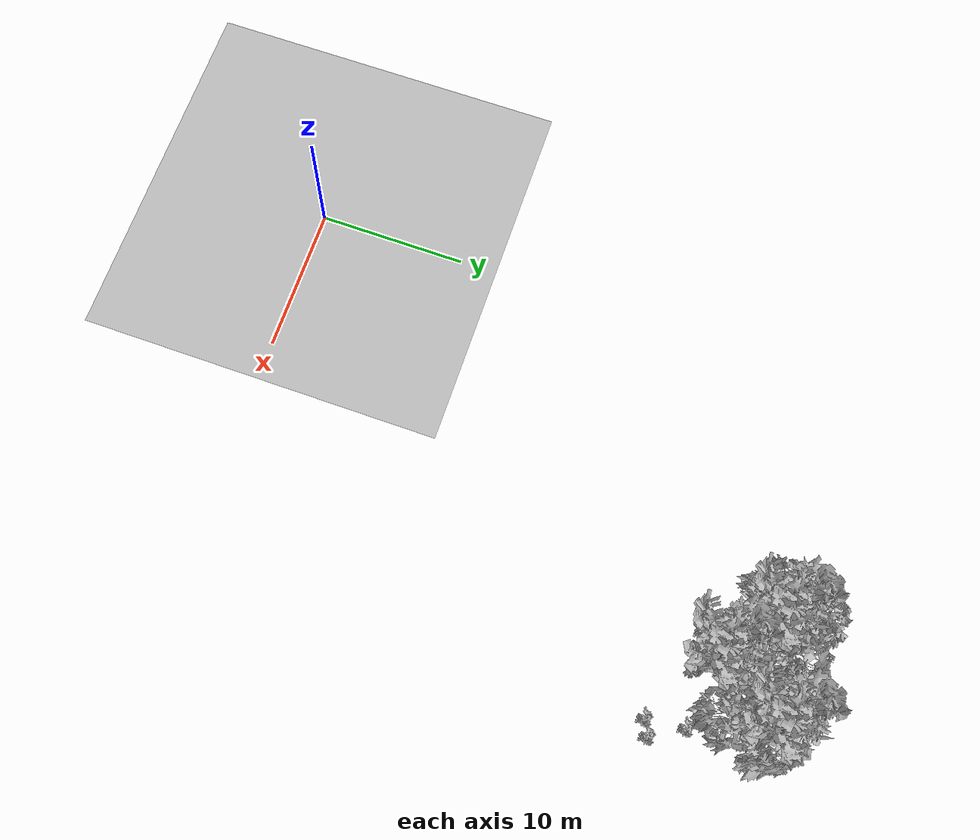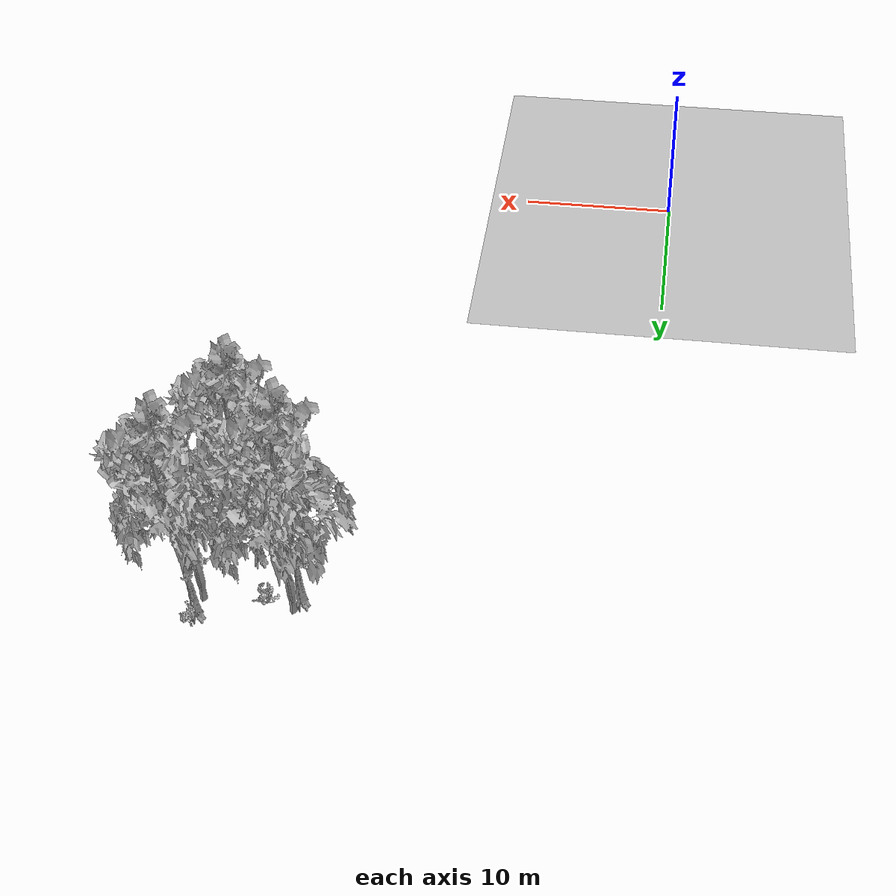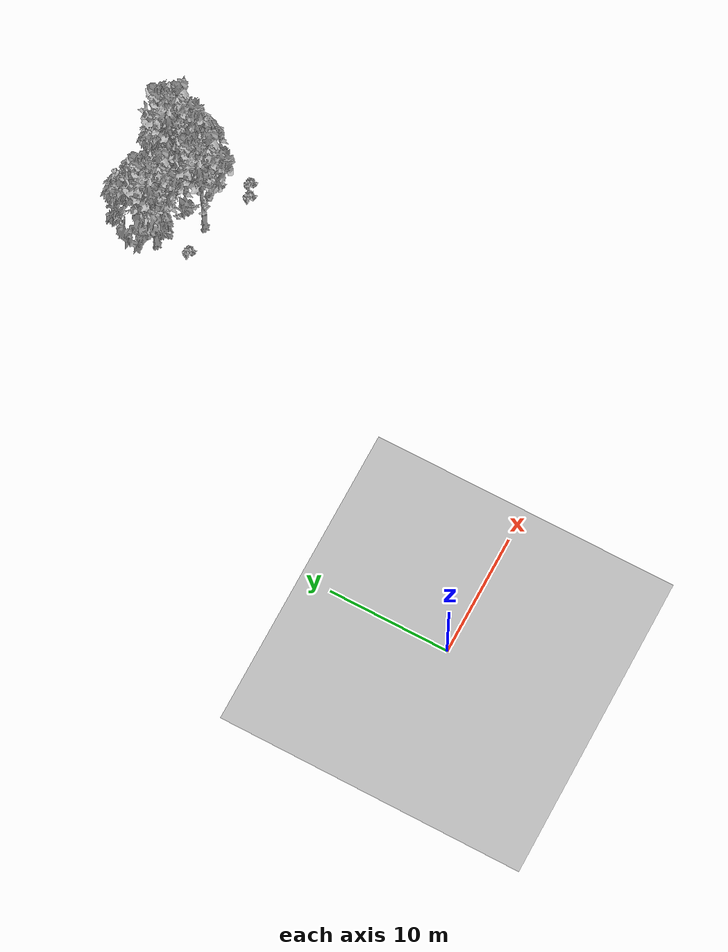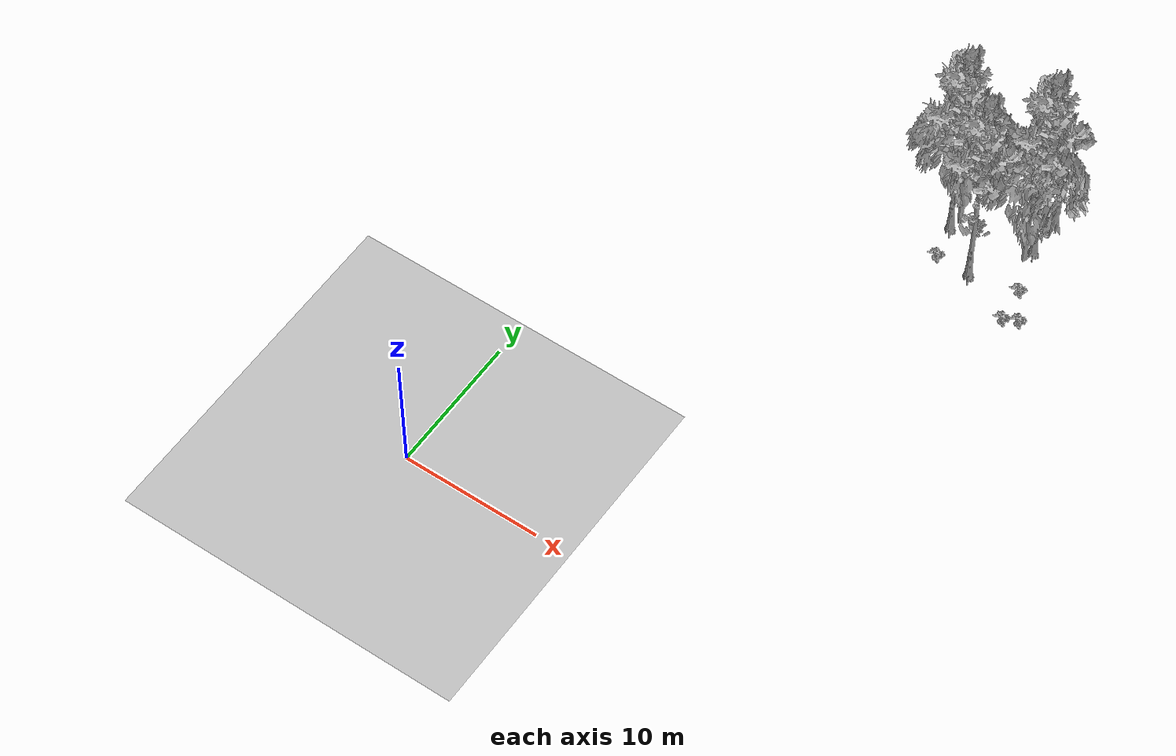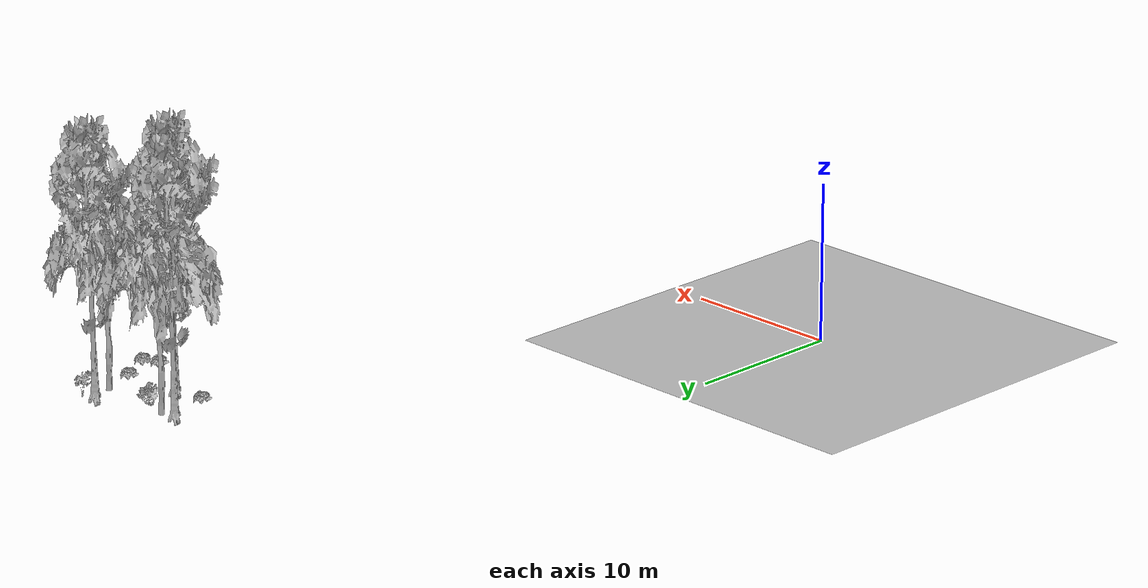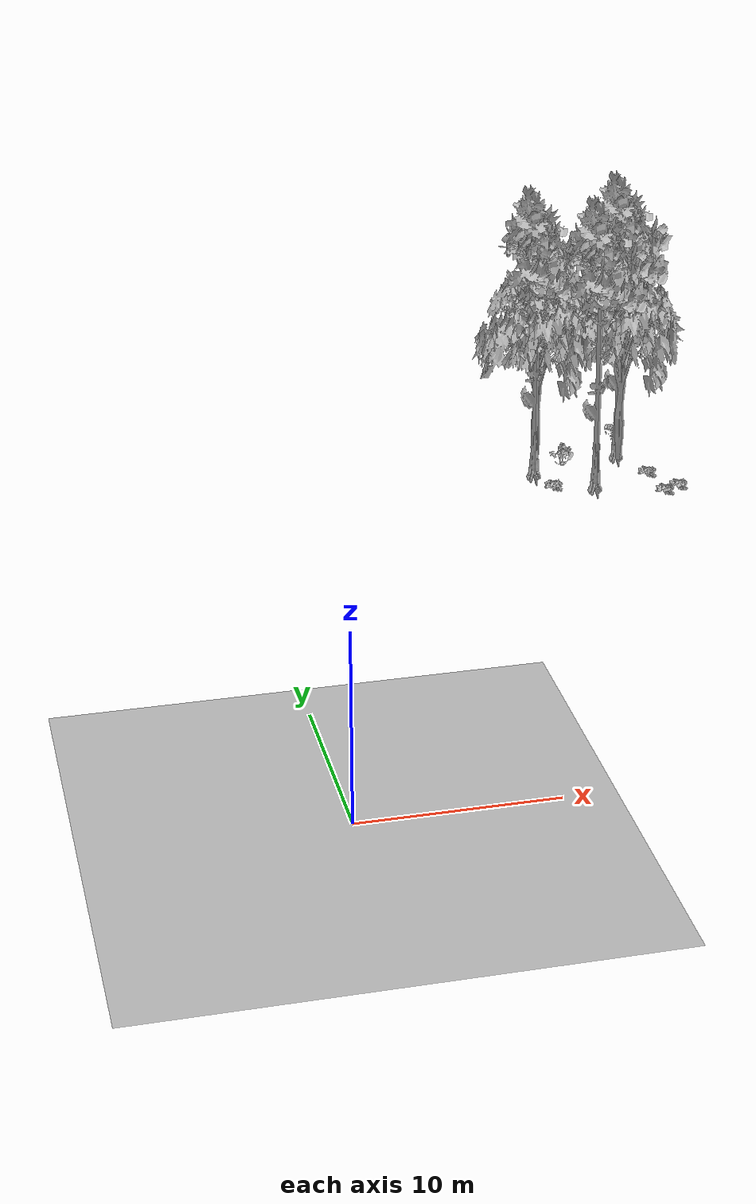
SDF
<sdf version="1.7">
 <world name="default">
  <model name="ground_plane">
   <static>1</static>
   <link name="link">
    <collision name="collision">
     <pose>-50 0 0 0 -0 0</pose>
     <geometry><plane><normal>0 0 1</normal><size>80 80</size></plane></geometry>
     <surface><contact><ode><min_depth>0.01</min_depth><max_vel>0</max_vel></ode></contact></surface>
    </collision>
    <visual name="grass">
     <cast_shadows>0</cast_shadows>
     <geometry>
      <mesh>
       <scale>0.46714285714285714 0.46714285714285714 0.1</scale>
       <uri>file://grass_plane/meshes/grass_plane.dae</uri>
      </mesh>
     </geometry>
    </visual>
   </link>
  </model>
  <model name="Tree 32">
   <static>1</static>
   <pose>21.484109983394397 32.56411379352093 0 1.57079 -0 0</pose>
   <link name="link">
    <collision name="collision">
     <geometry><mesh><scale>3.5 5 3.5</scale><uri>model://tree_9/meshes/tree_9.obj</uri></mesh></geometry>
    </collision>
    <visual name="visual">
     <geometry><mesh><scale>3.5 5 3.5</scale><uri>model://tree_9/meshes/tree_9.obj</uri></mesh></geometry>
    </visual>
   </link>
  </model>
  <model name="Tree 185">
   <static>1</static>
   <pose>18.469843285509135 35.14964313743013 0 1.57079 -0 0</pose>
   <link name="link">
    <collision name="collision">
     <geometry><mesh><scale>3.5 5 3.5</scale><uri>model://tree_9/meshes/tree_9.obj</uri></mesh></geometry>
    </collision>
    <visual name="visual">
     <geometry><mesh><scale>3.5 5 3.5</scale><uri>model://tree_9/meshes/tree_9.obj</uri></mesh></geometry>
    </visual>
   </link>
  </model>
  <model name="Tree 254">
   <static>1</static>
   <pose>24.01400010841421 36.56903205752084 0 1.57079 -0 0</pose>
   <link name="link">
    <collision name="collision">
     <geometry><mesh><scale>3.5 5 3.5</scale><uri>model://tree_9/meshes/tree_9.obj</uri></mesh></geometry>
    </collision>
    <visual name="visual">
     <geometry><mesh><scale>3.5 5 3.5</scale><uri>model://tree_9/meshes/tree_9.obj</uri></mesh></geometry>
    </visual>
   </link>
  </model>
  <model name="Tree 343">
   <static>1</static>
   <pose>23.76739310291645 35.597881105754524 0 1.57079 -0 0</pose>
   <link name="link">
    <collision name="collision">
     <geometry><mesh><scale>3.5 5 3.5</scale><uri>model://tree_2/meshes/tree_2.obj</uri></mesh></geometry>
    </collision>
    <visual name="visual">
     <geometry><mesh><scale>3.5 5 3.5</scale><uri>model://tree_2/meshes/tree_2.obj</uri></mesh></geometry>
    </visual>
   </link>
  </model>
  <model name="Tree 544">
   <static>1</static>
   <pose>18.668005316189728 35.87496351540062 0 1.57079 -0 0</pose>
   <link name="link">
    <collision name="collision">
     <geometry><mesh><scale>3.5 5 3.5</scale><uri>model://tree_2/meshes/tree_2.obj</uri></mesh></geometry>
    </collision>
    <visual name="visual">
     <geometry><mesh><scale>3.5 5 3.5</scale><uri>model://tree_2/meshes/tree_2.obj</uri></mesh></geometry>
    </visual>
   </link>
  </model>
  <model name="Bush 81">
   <static>1</static>
   <pose>24.078570871973874 37.48086440616147 0 1.57079 -0 0</pose>
   <link name="link">
    <collision name="collision">
     <geometry><mesh><scale>2 2 2</scale><uri>model://bush_5/meshes/bush_5.obj</uri></mesh></geometry>
     <surface><contact><collide_without_contact>false</collide_without_contact></contact></surface>
    </collision>
    <visual name="visual">
     <geometry><mesh><scale>2 2 2</scale><uri>model://bush_5/meshes/bush_5.obj</uri></mesh></geometry>
    </visual>
   </link>
  </model>
  <model name="Bush 89">
   <static>1</static>
   <pose>25.160766461861755 30.657336190041676 0 1.57079 -0 0</pose>
   <link name="link">
    <collision name="collision">
     <geometry><mesh><scale>2 2 2</scale><uri>model://bush_2/meshes/bush_2.obj</uri></mesh></geometry>
     <surface><contact><collide_without_contact>false</collide_without_contact></contact></surface>
    </collision>
    <visual name="visual">
     <geometry><mesh><scale>2 2 2</scale><uri>model://bush_2/meshes/bush_2.obj</uri></mesh></geometry>
    </visual>
   </link>
  </model>
  <model name="Bush 235">
   <static>1</static>
   <pose>18.94517107797919 32.59555001560582 0 1.57079 -0 0</pose>
   <link name="link">
    <collision name="collision">
     <geometry><mesh><scale>2 2 2</scale><uri>model://bush_2/meshes/bush_2.obj</uri></mesh></geometry>
     <surface><contact><collide_without_contact>false</collide_without_contact></contact></surface>
    </collision>
    <visual name="visual">
     <geometry><mesh><scale>2 2 2</scale><uri>model://bush_2/meshes/bush_2.obj</uri></mesh></geometry>
    </visual>
   </link>
  </model>
  <model name="Bush 366">
   <static>1</static>
   <pose>26.130625113171078 31.106456940369313 0 1.57079 -0 0</pose>
   <link name="link">
    <collision name="collision">
     <geometry><mesh><scale>2 2 2</scale><uri>model://bush_2/meshes/bush_2.obj</uri></mesh></geometry>
     <surface><contact><collide_without_contact>false</collide_without_contact></contact></surface>
    </collision>
    <visual name="visual">
     <geometry><mesh><scale>2 2 2</scale><uri>model://bush_2/meshes/bush_2.obj</uri></mesh></geometry>
    </visual>
   </link>
  </model>
  <model name="Bush 553">
   <static>1</static>
   <pose>20.304453604813993 35.46595932351288 0 1.57079 -0 0</pose>
   <link name="link">
    <collision name="collision">
     <geometry><mesh><scale>2 2 2</scale><uri>model://bush_4/meshes/bush_4.obj</uri></mesh></geometry>
     <surface><contact><collide_without_contact>false</collide_without_contact></contact></surface>
    </collision>
    <visual name="visual">
     <geometry><mesh><scale>2 2 2</scale><uri>model://bush_4/meshes/bush_4.obj</uri></mesh></geometry>
    </visual>
   </link>
  </model>
  <model name="Bush 565">
   <static>1</static>
   <pose>24.886547159957622 33.21300209929532 0 1.57079 -0 0</pose>
   <link name="link">
    <collision name="collision">
     <geometry><mesh><scale>2 2 2</scale><uri>model://bush_2/meshes/bush_2.obj</uri></mesh></geometry>
     <surface><contact><collide_without_contact>false</collide_without_contact></contact></surface>
    </collision>
    <visual name="visual">
     <geometry><mesh><scale>2 2 2</scale><uri>model://bush_2/meshes/bush_2.obj</uri></mesh></geometry>
    </visual>
   </link>
  </model>
 </world>
</sdf>
